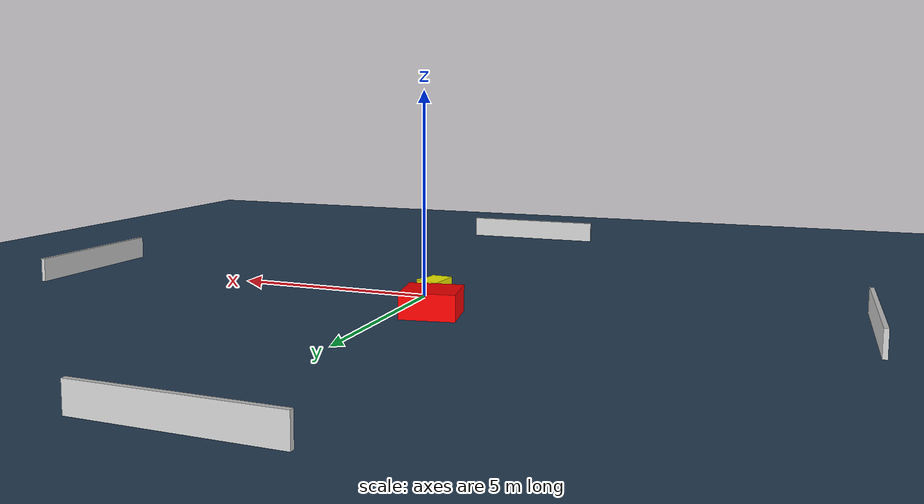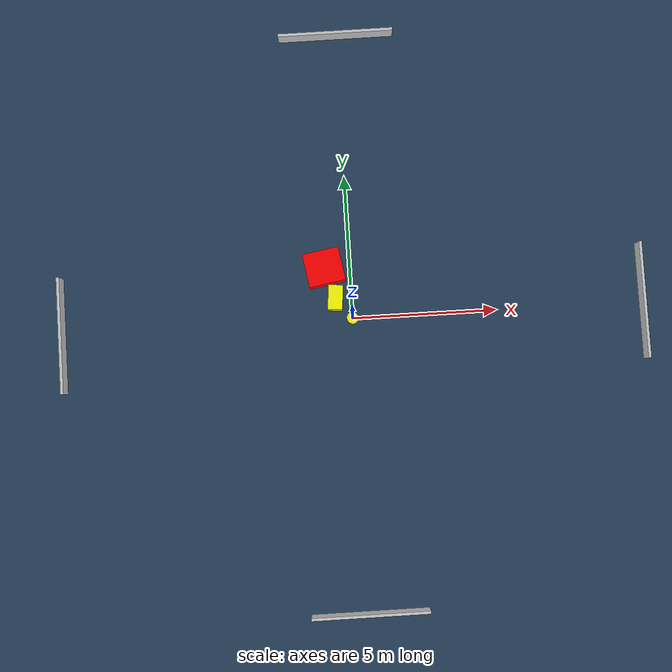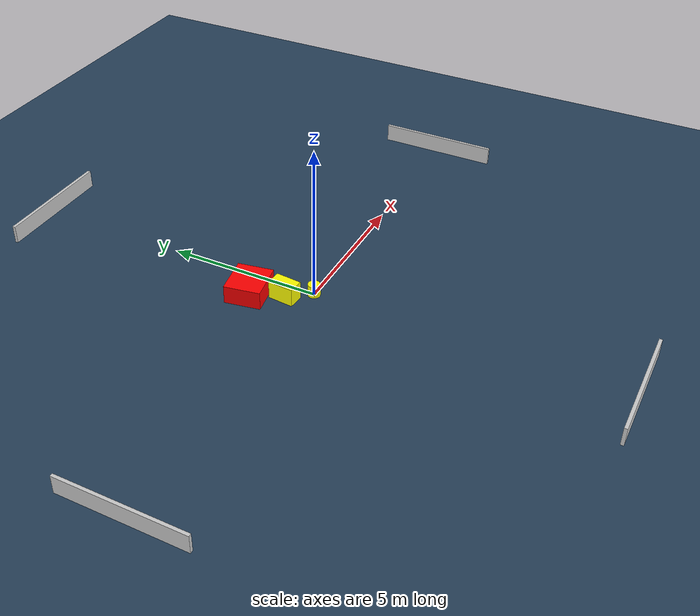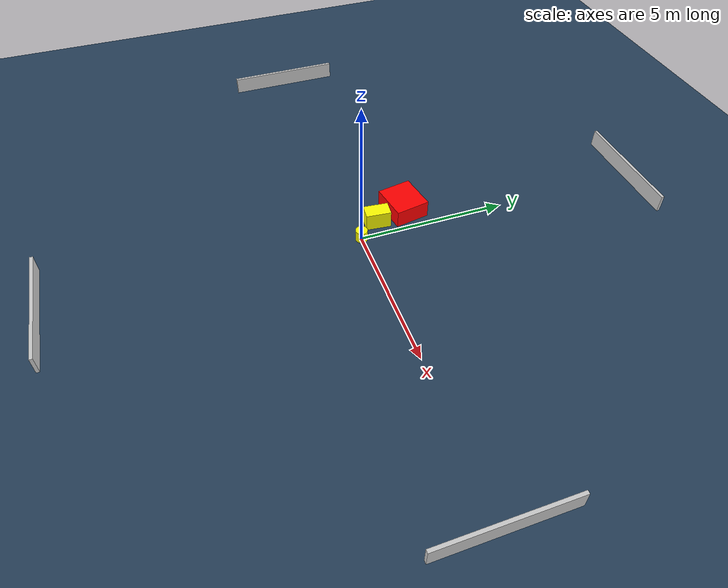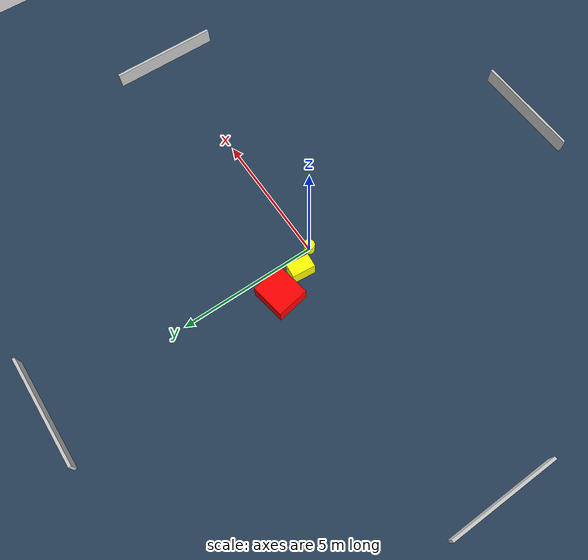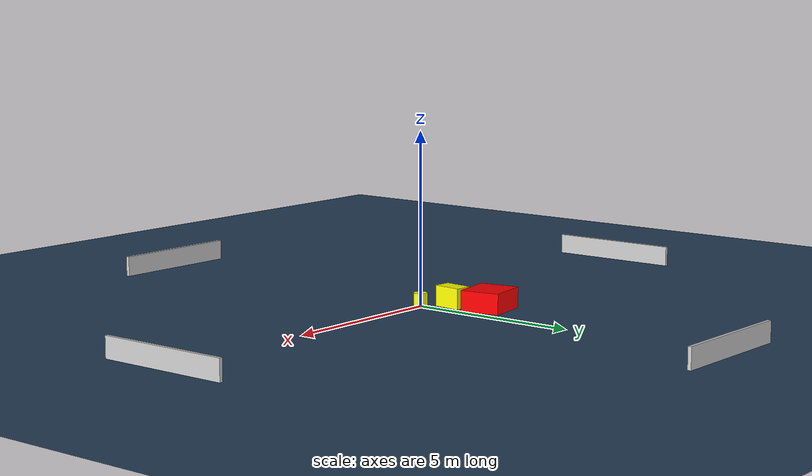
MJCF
<?xml version="1.0" ?>
<mujoco model="generated_environment">
  <option timestep="0.01" integrator="RK4" cone="elliptic"/>
  <default>
    <geom density="1"/>
  </default>
  <asset>
    <texture builtin="gradient" height="3072" name="skybox" rgb1="0.3 0.5 0.7" rgb2="0 0 0" type="skybox" width="512"/>
    <texture builtin="checker" height="300" name="groundplane" rgb1="0.2 0.3 0.4" rgb2="0.1 0.2 0.3" type="2d" width="300"/>
    <material name="groundplane" reflectance="0.2" texrepeat="5 5" texture="groundplane"/>
  </asset>
  <worldbody>
    <light dir="0 0 -1" directional="true" pos="0 0 1.5"/>
    <geom condim="3" friction="0.5 0.005 0.001" material="groundplane" name="floor" pos="0 0 0" size="0 0 0.05" type="plane"/>
    <body name="walls">
      <geom name="wall_1" condim="4" pos="-10.0 0.0 0.3" rgba="0.800000011920929 0.800000011920929 0.800000011920929 1.0" size="0.05 2.0 0.3" type="box"/>
      <geom name="wall_2" condim="4" pos="10.0 0.0 0.3" rgba="0.800000011920929 0.800000011920929 0.800000011920929 1.0" size="0.05 2.0 0.3" type="box"/>
      <geom name="wall_3" condim="4" pos="0.0 -10.0 0.3" rgba="0.800000011920929 0.800000011920929 0.800000011920929 1.0" size="2.0 0.05 0.3" type="box"/>
      <geom name="wall_4" condim="4" pos="0.0 10.0 0.3" rgba="0.800000011920929 0.800000011920929 0.800000011920929 1.0" size="2.0 0.05 0.3" type="box"/>
    </body>
    <body name="robot">
      <joint name="joint_x" type="slide" pos="0 0 0" axis="1 0 0"/>
      <joint name="joint_y" type="slide" pos="0 0 0" axis="0 1 0"/>
      <geom name="robot" type="cylinder" pos="0.0 0.0 0.2" size="0.2 0.2 0.0" mass="5.0" friction="1.0 0.005 0.0001" condim="4" rgba="1.0 1.0 0.0 1.0"/>
    </body>
    <body name="obstacle_1_movable">
      <geom name="obstacle_1_movable" condim="4" pos="-0.5485953646364388 0.7306465415974668 0.3" euler="0 0 264.4368874286057" friction="0.0 0.005 0.001" rgba="1.0 1.0 0.0 1.0" size="0.418823693351038 0.24907128220080574 0.3" type="box" mass="0.1"/>
      <joint type="free"/>
    </body>
    <body name="obstacle_2_static">
      <geom name="obstacle_2_static" condim="4" pos="-0.8816420748931185 1.7866546044394593 0.3" euler="0 0 279.7397668161222" friction="0.0 0.005 0.001" rgba="1.0 0.0 0.0 1.0" size="0.5830981600053418 0.6342146285346401 0.3" type="box"/>
    </body>
  </worldbody>
  <actuator>
    <motor name="actuator_x" joint="joint_x" gear="1" ctrlrange="-1 1"/>
    <motor name="actuator_y" joint="joint_y" gear="1" ctrlrange="-1 1"/>
  </actuator>
</mujoco>
